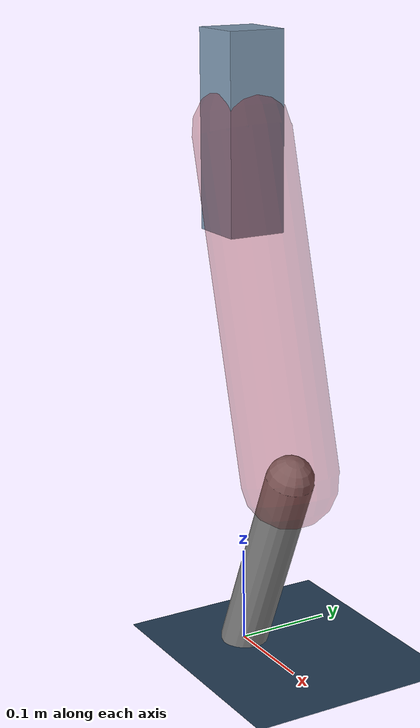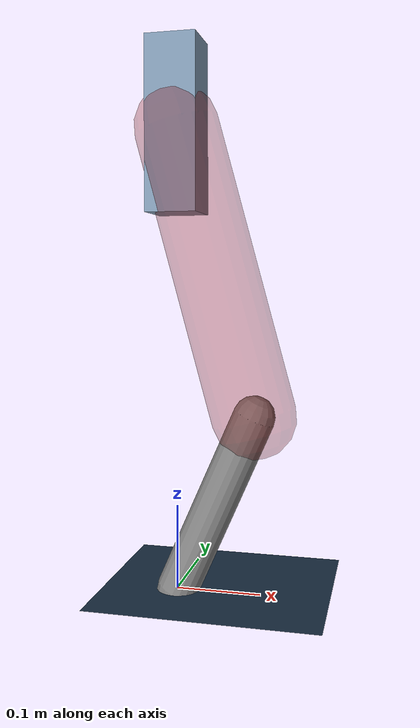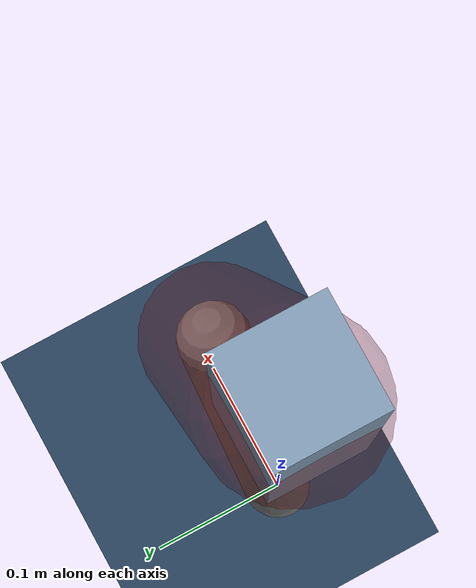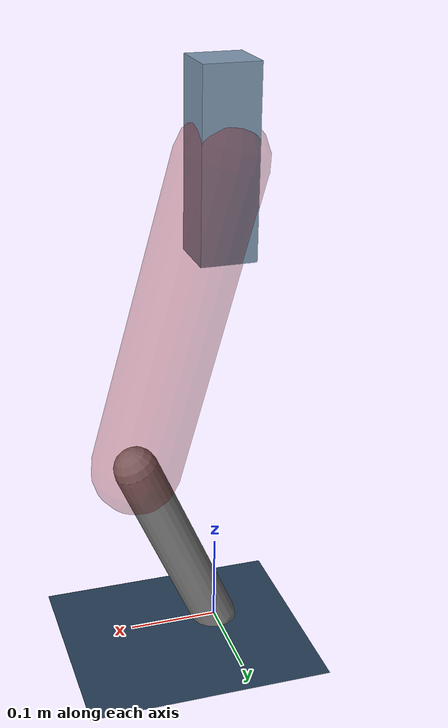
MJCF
<mujoco model="Hopper2D">
	<compiler inertiafromgeom="true" angle="radian" />
	<option timestep="0.001" integrator="implicit" cone="elliptic" solver="Newton" tolerance="1e-10" />

	<default>
		<geom contype="1" conaffinity="1" condim="3" friction="2 0.005 0.0001" solref="0.005 1" />
		<joint limited="true" damping="0.1" />
	</default>

	<asset>
		<texture name="skybox" type="skybox" builtin="gradient" rgb1=".4 .6 .8" rgb2="0 0 0" width="800" height="800" />
		<texture name="grid" type="2d" builtin="checker" rgb1=".1 .2 .3" rgb2=".2 .3 .4" width="300" height="300" mark="edge" markrgb=".2 .3 .4" />
		<material name="ground" texture="grid" texrepeat="1 1" texuniform="true" reflectance="0.1" />
		<material name="leg" rgba="0.5 0.6 0.7 1" />
	</asset>

	<worldbody>

		<geom name="floor" type="plane" size="5 5 0.25" material="ground" />

		<light directional="false" diffuse="0.8 0.8 0.8" specular="0.3 0.3 0.3" pos="0 0 2" dir="0 0 -1" />
		<light mode="targetbodycom" target="base" directional="false" diffuse="0.8 0.8 0.8" specular="0.3 0.3 0.3" pos="0 0 2" dir="0 0 -1" />

		<camera name="fixed" pos="0 -2 1" xyaxes="1 0 0 0 0 1" />
		<camera name="tracking" mode="trackcom" pos="0 -3 1" />

		<body name="root" pos="0 0 0.5470419908719332">
			<joint name="slide_x" type="slide" axis="1 0 0" range="-100 100" />
			<joint name="slide_z" type="slide" axis="0 0 1" range="0 10" />

			<body name="base" pos="0 0 0">
				<geom name="torso" type="box" size="0.03 0.03 0.1" mass="4.932" material="leg" />

				<body name="link1" pos="0 0 0" euler="0 1.3024640940629666 0">
					<joint type="hinge" axis="0 -1 0" pos="0 0 0" name="hinge1" limited="true" range="-3.14 3.14" stiffness="0" damping="0.1" />
					<geom name="thigh" type="capsule" fromto="0 0 0 0.3489089389931399 0 0" size="0.05" rgba="0.5 0 0 0.3" mass="1.1236450291807918" />

					<body name="link2" pos="0.3489089389931399 0 0" euler="0 0.6821694082109235 0">
						<joint type="hinge" axis="0 -1 0" pos="0 0 0" name="hinge2" limited="true" range="-3.14 3.14" stiffness="0" damping="0.1" />
						<geom name="shank" type="capsule" fromto="0 0 0 0.23003770552187353 0 0" size="0.025" mass="0.4260301644174988" />

					</body>
				</body>
			</body>
		</body>
	</worldbody>

	<actuator>
		<motor name="torque1" joint="hinge1" ctrlrange="-338.1330793417358 338.1330793417358" ctrllimited="true" gear="1" />
		<motor name="torque2" joint="hinge2" ctrlrange="-131.9430638838528 131.9430638838528" ctrllimited="true" gear="1" />
	</actuator>
</mujoco>
